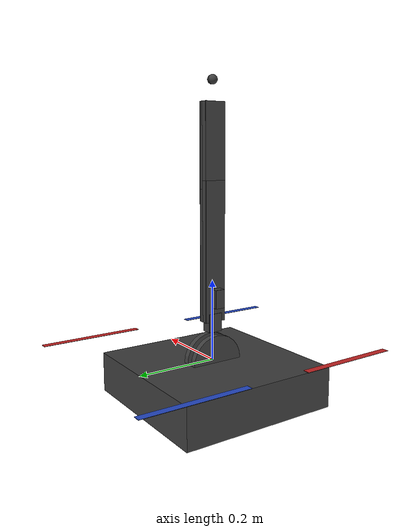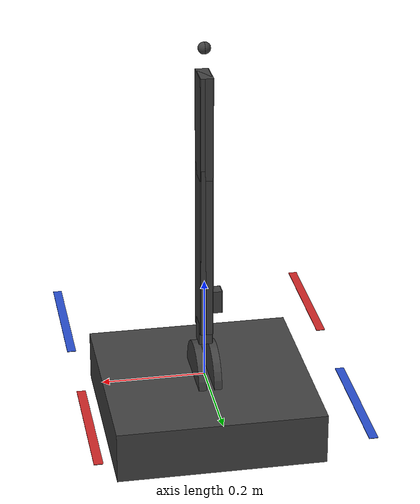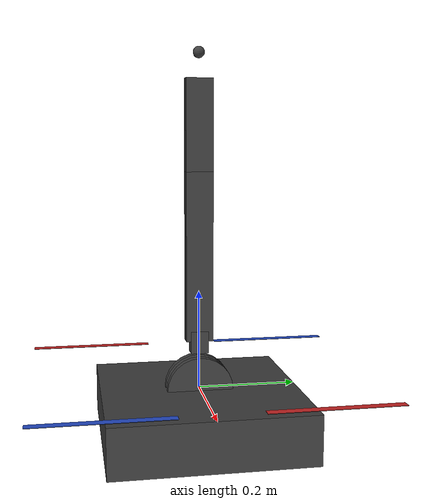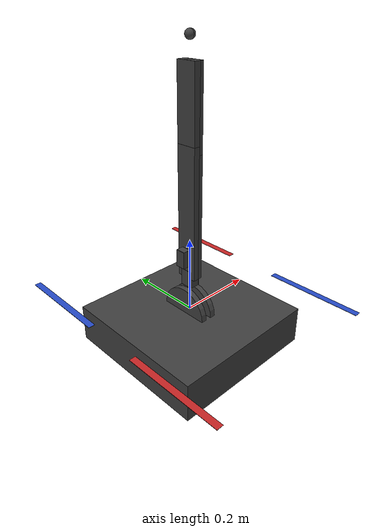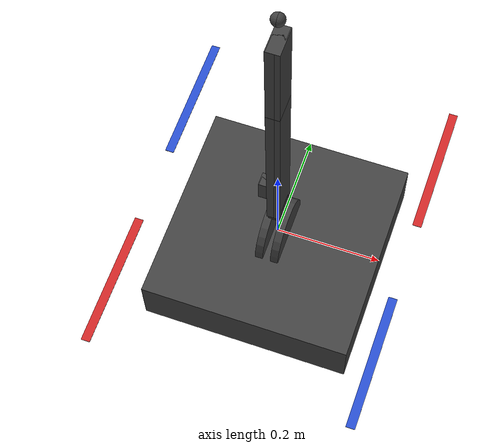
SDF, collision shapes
<sdf version='1.11'>
  <model name='martijn'>
    <link name='base_link'>
      <inertial>
        <pose>0 0 0 0 0 0</pose>
        <mass>2</mass>
        <inertia>
          <ixx>0.029659999999999999</ixx>
          <ixy>0</ixy>
          <ixz>0</ixz>
          <iyy>0.044659999999999998</iyy>
          <iyz>0</iyz>
          <izz>0.068330000000000002</izz>
        </inertia>
      </inertial>
      <collision name='base_link_collision'>
        <pose>0 0 -0.050000000000000003 0 0 0</pose>
        <geometry>
          <box>
            <size>0.40000000000000002 0.40000000000000002 0.10000000000000001</size>
          </box>
        </geometry>
        <surface>
          <bounce>
            <restitution_coefficient>0.01</restitution_coefficient>
          </bounce>
          <contact>
            <ode>
              <max_vel>100</max_vel>
              <min_depth>0.001</min_depth>
            </ode>
          </contact>
          <friction>
            <ode>
              <mu>1000000</mu>
              <mu2>1000000</mu2>
            </ode>
          </friction>
        </surface>
      </collision>
      <visual name='base_link_visual'>
        <pose>0 0 0 0 0 0</pose>
        <geometry>
          <mesh>
            <scale>1 1 1</scale>
            <uri>/home/hapham/aerial_tactile_servoing/ros2_ws/install/px4_uam_sim/share/px4_uam_sim/meshes/Martijn.stl</uri>
          </mesh>
        </geometry>
        <material>
          <diffuse>0.25 0.25 0.25 1</diffuse>
          <ambient>0.25 0.25 0.25 1</ambient>
        </material>
      </visual>
      <sensor name='air_pressure_sensor' type='air_pressure'>
        <always_on>true</always_on>
        <update_rate>50</update_rate>
        <air_pressure>
          <pressure>
            <noise type='gaussian'>
              <mean>0</mean>
              <stddev>0.01</stddev>
            </noise>
          </pressure>
        </air_pressure>
        <gz_frame_id>base_link</gz_frame_id>
      </sensor>
      <sensor name='imu_sensor' type='imu'>
        <always_on>true</always_on>
        <update_rate>1000</update_rate>
        <imu>
          <angular_velocity>
            <x>
              <noise type='gaussian'>
                <mean>0</mean>
                <stddev>0.0001</stddev>
                <dynamic_bias_stddev>0</dynamic_bias_stddev>
                <dynamic_bias_correlation_time>1000</dynamic_bias_correlation_time>
              </noise>
            </x>
            <y>
              <noise type='gaussian'>
                <mean>0</mean>
                <stddev>0.0001</stddev>
                <dynamic_bias_stddev>0</dynamic_bias_stddev>
                <dynamic_bias_correlation_time>1000</dynamic_bias_correlation_time>
              </noise>
            </y>
            <z>
              <noise type='gaussian'>
                <mean>0</mean>
                <stddev>0.0001</stddev>
                <dynamic_bias_stddev>0</dynamic_bias_stddev>
                <dynamic_bias_correlation_time>1000</dynamic_bias_correlation_time>
              </noise>
            </z>
          </angular_velocity>
          <linear_acceleration>
            <x>
              <noise type='gaussian'>
                <mean>0</mean>
                <stddev>0.0001</stddev>
                <dynamic_bias_stddev>0</dynamic_bias_stddev>
                <dynamic_bias_correlation_time>300</dynamic_bias_correlation_time>
              </noise>
            </x>
            <y>
              <noise type='gaussian'>
                <mean>0</mean>
                <stddev>0.0001</stddev>
                <dynamic_bias_stddev>0</dynamic_bias_stddev>
                <dynamic_bias_correlation_time>300</dynamic_bias_correlation_time>
              </noise>
            </y>
            <z>
              <noise type='gaussian'>
                <mean>0</mean>
                <stddev>0.0001</stddev>
                <dynamic_bias_stddev>0</dynamic_bias_stddev>
                <dynamic_bias_correlation_time>300</dynamic_bias_correlation_time>
              </noise>
            </z>
          </linear_acceleration>
        </imu>
        <gz_frame_id>base_link</gz_frame_id>
      </sensor>
      <sensor name='navsat_sensor' type='navsat'>
        <always_on>true</always_on>
        <update_rate>100</update_rate>
        <gz_frame_id>base_link</gz_frame_id>
        <gps/>
      </sensor>
      <sensor name='magnetometer_sensor' type='magnetometer'>
        <always_on>true</always_on>
        <update_rate>100</update_rate>
        <magnetometer>
          <x>
            <noise type='gaussian'>
              <stddev>0.0001</stddev>
            </noise>
          </x>
          <y>
            <noise type='gaussian'>
              <stddev>0.0001</stddev>
            </noise>
          </y>
          <z>
            <noise type='gaussian'>
              <stddev>0.0001</stddev>
            </noise>
          </z>
        </magnetometer>
        <gz_frame_id>base_link</gz_frame_id>
      </sensor>
      <velocity_decay>
        <linear>0</linear>
        <angular>0</angular>
      </velocity_decay>
    </link>
    <joint name='shoulder_joint_1' type='revolute'>
      <pose relative_to='base_link'>0.014999999999999999 0 0 -1.570792653573545 -1.5707926537266703 1.5707926536077643</pose>
      <parent>base_link</parent>
      <child>shoulder_link_1</child>
      <axis>
        <xyz>0 0 -1</xyz>
        <limit>
          <lower>-6.2800000000000002</lower>
          <upper>6.2800000000000002</upper>
          <effort>100</effort>
          <velocity>2</velocity>
        </limit>
        <dynamics>
          <damping>0.0050000000000000001</damping>
          <friction>0.01</friction>
          <spring_reference>0</spring_reference>
          <spring_stiffness>0</spring_stiffness>
        </dynamics>
      </axis>
    </joint>
    <link name='shoulder_link_1'>
      <pose relative_to='shoulder_joint_1'>0 0 0 0 0 0</pose>
      <inertial>
        <pose>0.056583333333333333 0 0.0081666666666666676 0 0 0</pose>
        <mass>0.12</mass>
        <inertia>
          <ixx>0.0001113708286666667</ixx>
          <ixy>0</ixy>
          <ixz>-3.9608333333333338e-05</ixz>
          <iyy>0.00039046666643333361</iyy>
          <iyz>0</iyz>
          <izz>0.00048123749976666683</izz>
        </inertia>
      </inertial>
      <collision name='shoulder_link_1_collision'>
        <pose>0 0 0 0 0 0</pose>
        <geometry>
          <cylinder>
            <length>0.014999999999999999</length>
            <radius>0.067000000000000004</radius>
          </cylinder>
        </geometry>
      </collision>
      <collision name='shoulder_link_1_fixed_joint_lump__motor_link_shoulder_1_collision_1'>
        <pose>0.097000000000000003 0 0.014 0 1.5707963267948966 0</pose>
        <geometry>
          <box>
            <size>0.025000000000000001 0.035000000000000003 0.044999999999999998</size>
          </box>
        </geometry>
      </collision>
      <visual name='shoulder_link_1_visual'>
        <pose>0 0 0 0 0 0</pose>
        <geometry>
          <mesh>
            <scale>1 1 1</scale>
            <uri>/home/hapham/aerial_tactile_servoing/ros2_ws/install/px4_uam_sim/share/px4_uam_sim/meshes/ShoulderLink.stl</uri>
          </mesh>
        </geometry>
        <material>
          <diffuse>0.25 0.25 0.25 1</diffuse>
          <ambient>0.25 0.25 0.25 1</ambient>
        </material>
      </visual>
      <visual name='shoulder_link_1_fixed_joint_lump__motor_link_shoulder_1_visual_1'>
        <pose>0.097000000000000003 0 0.014 0 1.5707963267948966 0</pose>
        <geometry>
          <mesh>
            <scale>1 1 1</scale>
            <uri>/home/hapham/aerial_tactile_servoing/ros2_ws/install/px4_uam_sim/share/px4_uam_sim/meshes/Servo.stl</uri>
          </mesh>
        </geometry>
        <material>
          <diffuse>0.25 0.25 0.25 1</diffuse>
          <ambient>0.25 0.25 0.25 1</ambient>
        </material>
      </visual>
    </link>
    <joint name='elbow_joint_1' type='revolute'>
      <pose relative_to='shoulder_link_1'>0.10949999999991571 0 0.013999954084936209 1.5723926535897819 -4.6587712005727982e-12 -3.1415926477396519</pose>
      <parent>shoulder_link_1</parent>
      <child>elbow_link_1</child>
      <axis>
        <xyz>0 0 1</xyz>
        <limit>
          <lower>-1.5708</lower>
          <upper>2</upper>
          <effort>100</effort>
          <velocity>2</velocity>
        </limit>
        <dynamics>
          <damping>0.01</damping>
          <friction>0.10000000000000001</friction>
          <spring_reference>0</spring_reference>
          <spring_stiffness>0</spring_stiffness>
        </dynamics>
      </axis>
    </joint>
    <link name='elbow_link_1'>
      <pose relative_to='elbow_joint_1'>0 0 0 0 0 0</pose>
      <inertial>
        <pose>-0.083000000000000004 0.010500000000000001 0 0 0 0</pose>
        <mass>0.10000000000000001</mass>
        <inertia>
          <ixx>2.4246661999999999e-05</ixx>
          <ixy>-3.4650000000000022e-05</ixy>
          <ixz>5.0006438111520978e-22</ixz>
          <iyy>0.00056584833209999993</iyy>
          <iyz>0</iyz>
          <izz>0.00056822329310000008</izz>
        </inertia>
      </inertial>
      <collision name='elbow_link_1_collision'>
        <pose>-0.16 0 0 0 0 0</pose>
        <geometry>
          <box>
            <size>0.34000000000000002 0.024 0.053999999999999999</size>
          </box>
        </geometry>
      </collision>
      <collision name='elbow_link_1_fixed_joint_lump__motor_link_elbow_1_collision_1'>
        <pose>-0.050000000000000003 0.014999999999999999 0 0 -1.5707963267948966 0</pose>
        <geometry>
          <box>
            <size>0.025000000000000001 0.035000000000000003 0.044999999999999998</size>
          </box>
        </geometry>
      </collision>
      <visual name='elbow_link_1_visual'>
        <pose>0 0 0 0 0 0</pose>
        <geometry>
          <mesh>
            <scale>1 1 1</scale>
            <uri>/home/hapham/aerial_tactile_servoing/ros2_ws/install/px4_uam_sim/share/px4_uam_sim/meshes/ElbowLink.stl</uri>
          </mesh>
        </geometry>
        <material>
          <diffuse>0.25 0.25 0.25 1</diffuse>
          <ambient>0.25 0.25 0.25 1</ambient>
        </material>
      </visual>
      <visual name='elbow_link_1_fixed_joint_lump__motor_link_elbow_1_visual_1'>
        <pose>-0.050000000000000003 0.014999999999999999 0 0 -1.5707963267948966 0</pose>
        <geometry>
          <mesh>
            <scale>1 1 1</scale>
            <uri>/home/hapham/aerial_tactile_servoing/ros2_ws/install/px4_uam_sim/share/px4_uam_sim/meshes/ServoElbow.stl</uri>
          </mesh>
        </geometry>
        <material>
          <diffuse>0.25 0.25 0.25 1</diffuse>
          <ambient>0.25 0.25 0.25 1</ambient>
        </material>
      </visual>
    </link>
    <joint name='forearm_joint_1' type='revolute'>
      <pose relative_to='elbow_link_1'>-0.31 0 0 0 0 0</pose>
      <parent>elbow_link_1</parent>
      <child>forearm_link_1</child>
      <axis>
        <xyz>0 -1 0</xyz>
        <limit>
          <lower>-2.1000000000000001</lower>
          <upper>2.1000000000000001</upper>
          <effort>100</effort>
          <velocity>20</velocity>
        </limit>
        <dynamics>
          <damping>0.0001</damping>
          <friction>0</friction>
          <spring_reference>0</spring_reference>
          <spring_stiffness>0</spring_stiffness>
        </dynamics>
      </axis>
    </joint>
    <link name='forearm_link_1'>
      <pose relative_to='forearm_joint_1'>0 0 0 0 0 0</pose>
      <inertial>
        <pose>-0.13209499999999999 0 0 0 0 0</pose>
        <mass>0.040000000000000001</mass>
        <inertia>
          <ixx>1.049e-05</ixx>
          <ixy>0</ixy>
          <ixz>0</ixz>
          <iyy>0.00020190149232784629</iyy>
          <iyz>0</iyz>
          <izz>0.00020190149232784629</izz>
        </inertia>
      </inertial>
      <collision name='forearm_link_1_collision'>
        <pose>-0.099999999999999992 0 0 0 0 0</pose>
        <geometry>
          <box>
            <size>0.20000000000000001 0.024 0.053999999999999999</size>
          </box>
        </geometry>
      </collision>
      <collision name='forearm_link_1_fixed_joint_lump__tactip_link_1_collision_1'>
        <pose>-0.24875 0 0 0 0 0</pose>
        <geometry>
          <sphere>
            <radius>0.01125</radius>
          </sphere>
        </geometry>
      </collision>
      <visual name='forearm_link_1_visual'>
        <pose>0 0 0 0 0 0</pose>
        <geometry>
          <mesh>
            <scale>1 1 1</scale>
            <uri>/home/hapham/aerial_tactile_servoing/ros2_ws/install/px4_uam_sim/share/px4_uam_sim/meshes/ForearmLink.stl</uri>
          </mesh>
        </geometry>
        <material>
          <diffuse>0.25 0.25 0.25 1</diffuse>
          <ambient>0.25 0.25 0.25 1</ambient>
        </material>
      </visual>
      <visual name='forearm_link_1_fixed_joint_lump__tactip_link_1_visual_1'>
        <pose>-0.24875 0 0 0 0 0</pose>
        <geometry>
          <sphere>
            <radius>0.01125</radius>
          </sphere>
        </geometry>
        <material>
          <diffuse>0.187500015 0.187500015 0.187500015 1</diffuse>
          <ambient>0.187500015 0.187500015 0.187500015 1</ambient>
        </material>
      </visual>
      <visual name='forearm_link_1_fixed_joint_lump__tactip_link_1_visual_2'>
        <pose>-0.22838 0 0 0 1.5707963267948966 0</pose>
        <geometry>
          <cylinder>
            <length>0.040750000000000001</length>
            <radius>0.012500000000000001</radius>
          </cylinder>
        </geometry>
        <material>
          <diffuse>1 1 1 1</diffuse>
          <ambient>1 1 1 1</ambient>
        </material>
      </visual>
    </link>
    <joint name='shoulder_joint_2' type='revolute'>
      <pose relative_to='base_link'>-0.014999999999999999 0 0 -1.5707926536359929 -1.5707926536964443 -1.5707926535604291</pose>
      <parent>base_link</parent>
      <child>shoulder_link_2</child>
      <axis>
        <xyz>0 0 1</xyz>
        <limit>
          <lower>-6.2800000000000002</lower>
          <upper>6.2800000000000002</upper>
          <effort>100</effort>
          <velocity>2</velocity>
        </limit>
        <dynamics>
          <damping>0.0050000000000000001</damping>
          <friction>0.01</friction>
          <spring_reference>0</spring_reference>
          <spring_stiffness>0</spring_stiffness>
        </dynamics>
      </axis>
    </joint>
    <link name='shoulder_link_2'>
      <pose relative_to='shoulder_joint_2'>0 0 0 0 0 0</pose>
      <inertial>
        <pose>0.056583333333333333 0 0.0084583333333333333 0 0 0</pose>
        <mass>0.12</mass>
        <inertia>
          <ixx>0.0001117864536666667</ixx>
          <ixy>0</ixy>
          <ixz>-4.1022916666666687e-05</ixz>
          <iyy>0.00039088229143333352</iyy>
          <iyz>0</iyz>
          <izz>0.00048123749976666683</izz>
        </inertia>
      </inertial>
      <collision name='shoulder_link_2_collision'>
        <pose>0 0 0 0 0 0</pose>
        <geometry>
          <cylinder>
            <length>0.014999999999999999</length>
            <radius>0.067000000000000004</radius>
          </cylinder>
        </geometry>
      </collision>
      <collision name='shoulder_link_2_fixed_joint_lump__motor_link_shoulder_2_collision_1'>
        <pose>0.097000000000000003 0 0.014500000000000001 0 1.5707963267948966 0</pose>
        <geometry>
          <box>
            <size>0.025000000000000001 0.035000000000000003 0.044999999999999998</size>
          </box>
        </geometry>
      </collision>
      <visual name='shoulder_link_2_visual'>
        <pose>0 0 0 0 0 0</pose>
        <geometry>
          <mesh>
            <scale>1 1 1</scale>
            <uri>/home/hapham/aerial_tactile_servoing/ros2_ws/install/px4_uam_sim/share/px4_uam_sim/meshes/ShoulderLink.stl</uri>
          </mesh>
        </geometry>
        <material>
          <diffuse>0.25 0.25 0.25 1</diffuse>
          <ambient>0.25 0.25 0.25 1</ambient>
        </material>
      </visual>
      <visual name='shoulder_link_2_fixed_joint_lump__motor_link_shoulder_2_visual_1'>
        <pose>0.097000000000000003 0 0.014500000000000001 0 1.5707963267948966 0</pose>
        <geometry>
          <mesh>
            <scale>1 1 1</scale>
            <uri>/home/hapham/aerial_tactile_servoing/ros2_ws/install/px4_uam_sim/share/px4_uam_sim/meshes/Servo.stl</uri>
          </mesh>
        </geometry>
        <material>
          <diffuse>0.25 0.25 0.25 1</diffuse>
          <ambient>0.25 0.25 0.25 1</ambient>
        </material>
      </visual>
    </link>
    <joint name='elbow_joint_2' type='revolute'>
      <pose relative_to='shoulder_link_2'>0.10949999999991571 0 0.01449995408493621 -1.5707926535897929 -7.3464102067221545e-06 3.1415926535897931</pose>
      <parent>shoulder_link_2</parent>
      <child>elbow_link_2</child>
      <axis>
        <xyz>0 0 1</xyz>
        <limit>
          <lower>-1.5708</lower>
          <upper>2</upper>
          <effort>100</effort>
          <velocity>2</velocity>
        </limit>
        <dynamics>
          <damping>0.01</damping>
          <friction>0.10000000000000001</friction>
          <spring_reference>0</spring_reference>
          <spring_stiffness>0</spring_stiffness>
        </dynamics>
      </axis>
    </joint>
    <link name='elbow_link_2'>
      <pose relative_to='elbow_joint_2'>0 0 0 0 0 0</pose>
      <inertial>
        <pose>-0.083000000000000004 0.010500000000000001 0 0 0 0</pose>
        <mass>0.10000000000000001</mass>
        <inertia>
          <ixx>2.4246661999999999e-05</ixx>
          <ixy>-3.4650000000000022e-05</ixy>
          <ixz>5.0006438111520978e-22</ixz>
          <iyy>0.00056584833209999993</iyy>
          <iyz>0</iyz>
          <izz>0.00056822329310000008</izz>
        </inertia>
      </inertial>
      <collision name='elbow_link_2_collision'>
        <pose>-0.16 0 0 0 0 3.1400000000000001</pose>
        <geometry>
          <box>
            <size>0.34000000000000002 0.024 0.053999999999999999</size>
          </box>
        </geometry>
      </collision>
      <collision name='elbow_link_2_fixed_joint_lump__motor_link_elbow_2_collision_1'>
        <pose>-0.050000000000000003 0.014999999999999999 0 0 -1.5707963267948966 0</pose>
        <geometry>
          <box>
            <size>0.025000000000000001 0.035000000000000003 0.044999999999999998</size>
          </box>
        </geometry>
      </collision>
      <visual name='elbow_link_2_visual'>
        <pose>0 0 0 0 0 0</pose>
        <geometry>
          <mesh>
            <scale>1 1 1</scale>
            <uri>/home/hapham/aerial_tactile_servoing/ros2_ws/install/px4_uam_sim/share/px4_uam_sim/meshes/ElbowLink.stl</uri>
          </mesh>
        </geometry>
        <material>
          <diffuse>0.25 0.25 0.25 1</diffuse>
          <ambient>0.25 0.25 0.25 1</ambient>
        </material>
      </visual>
      <visual name='elbow_link_2_fixed_joint_lump__motor_link_elbow_2_visual_1'>
        <pose>-0.050000000000000003 0.014999999999999999 0 0 -1.5707963267948966 0</pose>
        <geometry>
          <mesh>
            <scale>1 1 1</scale>
            <uri>/home/hapham/aerial_tactile_servoing/ros2_ws/install/px4_uam_sim/share/px4_uam_sim/meshes/ServoElbow.stl</uri>
          </mesh>
        </geometry>
        <material>
          <diffuse>0.25 0.25 0.25 1</diffuse>
          <ambient>0.25 0.25 0.25 1</ambient>
        </material>
      </visual>
    </link>
    <joint name='forearm_joint_2' type='revolute'>
      <pose relative_to='elbow_link_2'>-0.31 0 0 0 0 0</pose>
      <parent>elbow_link_2</parent>
      <child>forearm_link_2</child>
      <axis>
        <xyz>0 -1 0</xyz>
        <limit>
          <lower>-2.1000000000000001</lower>
          <upper>2.1000000000000001</upper>
          <effort>100</effort>
          <velocity>20</velocity>
        </limit>
        <dynamics>
          <damping>0.0001</damping>
          <friction>0</friction>
          <spring_reference>0</spring_reference>
          <spring_stiffness>0</spring_stiffness>
        </dynamics>
      </axis>
    </joint>
    <link name='forearm_link_2'>
      <pose relative_to='forearm_joint_2'>0 0 0 0 0 0</pose>
      <inertial>
        <pose>-0.13209499999999999 0 0 0 0 0</pose>
        <mass>0.040000000000000001</mass>
        <inertia>
          <ixx>1.049e-05</ixx>
          <ixy>0</ixy>
          <ixz>0</ixz>
          <iyy>0.00020190149232784629</iyy>
          <iyz>0</iyz>
          <izz>0.00020190149232784629</izz>
        </inertia>
      </inertial>
      <collision name='forearm_link_2_collision'>
        <pose>-0.099999999999999992 0 0 0 0 0</pose>
        <geometry>
          <box>
            <size>0.20000000000000001 0.024 0.053999999999999999</size>
          </box>
        </geometry>
      </collision>
      <collision name='forearm_link_2_fixed_joint_lump__tactip_link_2_collision_1'>
        <pose>-0.24875 0 0 0 0 0</pose>
        <geometry>
          <sphere>
            <radius>0.01125</radius>
          </sphere>
        </geometry>
      </collision>
      <visual name='forearm_link_2_visual'>
        <pose>0 0 0 0 0 0</pose>
        <geometry>
          <mesh>
            <scale>1 1 1</scale>
            <uri>/home/hapham/aerial_tactile_servoing/ros2_ws/install/px4_uam_sim/share/px4_uam_sim/meshes/ForearmLink.stl</uri>
          </mesh>
        </geometry>
        <material>
          <diffuse>0.25 0.25 0.25 1</diffuse>
          <ambient>0.25 0.25 0.25 1</ambient>
        </material>
      </visual>
      <visual name='forearm_link_2_fixed_joint_lump__tactip_link_2_visual_1'>
        <pose>-0.24875 0 0 0 0 0</pose>
        <geometry>
          <sphere>
            <radius>0.01125</radius>
          </sphere>
        </geometry>
        <material>
          <diffuse>0.187500015 0.187500015 0.187500015 1</diffuse>
          <ambient>0.187500015 0.187500015 0.187500015 1</ambient>
        </material>
      </visual>
      <visual name='forearm_link_2_fixed_joint_lump__tactip_link_2_visual_2'>
        <pose>-0.22838 0 0 0 1.5707963267948966 0</pose>
        <geometry>
          <cylinder>
            <length>0.040750000000000001</length>
            <radius>0.012500000000000001</radius>
          </cylinder>
        </geometry>
        <material>
          <diffuse>1 1 1 1</diffuse>
          <ambient>1 1 1 1</ambient>
        </material>
      </visual>
    </link>
    <link name='rotor_0'>
      <gravity>true</gravity>
      <self_collide>false</self_collide>
      <velocity_decay/>
      <pose>0.2495 -0.20799999999999999 0.029999999999999999 0 0 0</pose>
      <inertial>
        <mass>0.016076923076923075</mass>
        <inertia>
          <ixx>3.8464910483993325e-07</ixx>
          <iyy>2.6115851691700804e-05</iyy>
          <izz>2.6498582347140039e-05</izz>
          <ixy>0</ixy>
          <ixz>0</ixz>
          <iyz>0</iyz>
        </inertia>
      </inertial>
      <visual name='rotor_0_visual'>
        <pose>0 0 0 0 0 1.5708</pose>
        <geometry>
          <mesh>
            <scale>0.67000000000000004 0.67000000000000004 0.84615384615384615</scale>
            <uri>/home/hapham/aerial_tactile_servoing/ros2_ws/install/px4_uam_sim/share/px4_uam_sim/meshes/centered_prop_ccw.stl</uri>
          </mesh>
        </geometry>
        <material>
          <script>
            <name>Gazebo/Blue</name>
            <uri>file://media/materials/scripts/gazebo.material</uri>
          </script>
        </material>
      </visual>
      <collision name='rotor_0_collision'>
        <pose>0 0 0 0 0 1.5708</pose>
        <geometry>
          <box>
            <size>0.26000000000000001 0.016923076923076923 0.0008461538461538462</size>
          </box>
        </geometry>
        <surface>
          <contact>
            <ode>
              <min_depth>0.001</min_depth>
              <max_vel>0</max_vel>
            </ode>
          </contact>
          <friction>
            <ode/>
          </friction>
        </surface>
      </collision>
    </link>
    <joint name='rotor_0_joint' type='revolute'>
      <parent>base_link</parent>
      <child>rotor_0</child>
      <axis>
        <xyz>0 0 1</xyz>
        <limit>
          <lower>-10000000000000000</lower>
          <upper>10000000000000000</upper>
        </limit>
        <dynamics>
          <spring_reference>0</spring_reference>
          <spring_stiffness>0</spring_stiffness>
        </dynamics>
      </axis>
    </joint>
    <plugin name='gz::sim::systems::MulticopterMotorModel' filename='gz-sim-multicopter-motor-model-system'>
      <jointName>rotor_0_joint</jointName>
      <linkName>rotor_0</linkName>
      <turningDirection>ccw</turningDirection>
      <timeConstantUp>0.0125</timeConstantUp>
      <timeConstantDown>0.025</timeConstantDown>
      <maxRotVelocity>1000.0</maxRotVelocity>
      <motorConstant>4e-05</motorConstant>
      <momentConstant>0.016</momentConstant>
      <commandSubTopic>command/motor_speed</commandSubTopic>
      <motorNumber>0</motorNumber>
      <rotorDragCoefficient>8.06428e-05</rotorDragCoefficient>
      <rollingMomentCoefficient>1e-06</rollingMomentCoefficient>
      <rotorVelocitySlowdownSim>10</rotorVelocitySlowdownSim>
      <motorType>velocity</motorType>
    </plugin>
    <link name='rotor_1'>
      <gravity>true</gravity>
      <self_collide>false</self_collide>
      <velocity_decay/>
      <pose>-0.2495 0.20799999999999999 0.029999999999999999 0 0 0</pose>
      <inertial>
        <mass>0.016076923076923075</mass>
        <inertia>
          <ixx>3.8464910483993325e-07</ixx>
          <iyy>2.6115851691700804e-05</iyy>
          <izz>2.6498582347140039e-05</izz>
          <ixy>0</ixy>
          <ixz>0</ixz>
          <iyz>0</iyz>
        </inertia>
      </inertial>
      <visual name='rotor_1_visual'>
        <pose>0 0 0 0 0 1.5708</pose>
        <geometry>
          <mesh>
            <scale>0.67000000000000004 0.67000000000000004 0.84615384615384615</scale>
            <uri>/home/hapham/aerial_tactile_servoing/ros2_ws/install/px4_uam_sim/share/px4_uam_sim/meshes/centered_prop_ccw.stl</uri>
          </mesh>
        </geometry>
        <material>
          <script>
            <name>Gazebo/Blue</name>
            <uri>file://media/materials/scripts/gazebo.material</uri>
          </script>
        </material>
      </visual>
      <collision name='rotor_1_collision'>
        <pose>0 0 0 0 0 1.5708</pose>
        <geometry>
          <box>
            <size>0.26000000000000001 0.016923076923076923 0.0008461538461538462</size>
          </box>
        </geometry>
        <surface>
          <contact>
            <ode>
              <min_depth>0.001</min_depth>
              <max_vel>0</max_vel>
            </ode>
          </contact>
          <friction>
            <ode/>
          </friction>
        </surface>
      </collision>
    </link>
    <joint name='rotor_1_joint' type='revolute'>
      <parent>base_link</parent>
      <child>rotor_1</child>
      <axis>
        <xyz>0 0 1</xyz>
        <limit>
          <lower>-10000000000000000</lower>
          <upper>10000000000000000</upper>
        </limit>
        <dynamics>
          <spring_reference>0</spring_reference>
          <spring_stiffness>0</spring_stiffness>
        </dynamics>
      </axis>
    </joint>
    <plugin name='gz::sim::systems::MulticopterMotorModel' filename='gz-sim-multicopter-motor-model-system'>
      <jointName>rotor_1_joint</jointName>
      <linkName>rotor_1</linkName>
      <turningDirection>ccw</turningDirection>
      <timeConstantUp>0.0125</timeConstantUp>
      <timeConstantDown>0.025</timeConstantDown>
      <maxRotVelocity>1000.0</maxRotVelocity>
      <motorConstant>4e-05</motorConstant>
      <momentConstant>0.016</momentConstant>
      <commandSubTopic>command/motor_speed</commandSubTopic>
      <motorNumber>1</motorNumber>
      <rotorDragCoefficient>8.06428e-05</rotorDragCoefficient>
      <rollingMomentCoefficient>1e-06</rollingMomentCoefficient>
      <rotorVelocitySlowdownSim>10</rotorVelocitySlowdownSim>
      <motorType>velocity</motorType>
    </plugin>
    <link name='rotor_2'>
      <gravity>true</gravity>
      <self_collide>false</self_collide>
      <velocity_decay/>
      <pose>0.2495 0.20799999999999999 0.029999999999999999 0 0 0</pose>
      <inertial>
        <mass>0.016076923076923075</mass>
        <inertia>
          <ixx>3.8464910483993325e-07</ixx>
          <iyy>2.6115851691700804e-05</iyy>
          <izz>2.6498582347140039e-05</izz>
          <ixy>0</ixy>
          <ixz>0</ixz>
          <iyz>0</iyz>
        </inertia>
      </inertial>
      <visual name='rotor_2_visual'>
        <pose>0 0 0 0 0 1.5708</pose>
        <geometry>
          <mesh>
            <scale>0.67000000000000004 0.67000000000000004 0.84615384615384615</scale>
            <uri>/home/hapham/aerial_tactile_servoing/ros2_ws/install/px4_uam_sim/share/px4_uam_sim/meshes/centered_prop_ccw.stl</uri>
          </mesh>
        </geometry>
        <material>
          <script>
            <name>Gazebo/Red</name>
            <uri>file://media/materials/scripts/gazebo.material</uri>
          </script>
        </material>
      </visual>
      <collision name='rotor_2_collision'>
        <pose>0 0 0 0 0 1.5708</pose>
        <geometry>
          <box>
            <size>0.26000000000000001 0.016923076923076923 0.0008461538461538462</size>
          </box>
        </geometry>
        <surface>
          <contact>
            <ode>
              <min_depth>0.001</min_depth>
              <max_vel>0</max_vel>
            </ode>
          </contact>
          <friction>
            <ode/>
          </friction>
        </surface>
      </collision>
    </link>
    <joint name='rotor_2_joint' type='revolute'>
      <parent>base_link</parent>
      <child>rotor_2</child>
      <axis>
        <xyz>0 0 1</xyz>
        <limit>
          <lower>-10000000000000000</lower>
          <upper>10000000000000000</upper>
        </limit>
        <dynamics>
          <spring_reference>0</spring_reference>
          <spring_stiffness>0</spring_stiffness>
        </dynamics>
      </axis>
    </joint>
    <plugin name='gz::sim::systems::MulticopterMotorModel' filename='gz-sim-multicopter-motor-model-system'>
      <jointName>rotor_2_joint</jointName>
      <linkName>rotor_2</linkName>
      <turningDirection>cw</turningDirection>
      <timeConstantUp>0.0125</timeConstantUp>
      <timeConstantDown>0.025</timeConstantDown>
      <maxRotVelocity>1000.0</maxRotVelocity>
      <motorConstant>4e-05</motorConstant>
      <momentConstant>0.016</momentConstant>
      <commandSubTopic>command/motor_speed</commandSubTopic>
      <motorNumber>2</motorNumber>
      <rotorDragCoefficient>8.06428e-05</rotorDragCoefficient>
      <rollingMomentCoefficient>1e-06</rollingMomentCoefficient>
      <rotorVelocitySlowdownSim>10</rotorVelocitySlowdownSim>
      <motorType>velocity</motorType>
    </plugin>
    <link name='rotor_3'>
      <gravity>true</gravity>
      <self_collide>false</self_collide>
      <velocity_decay/>
      <pose>-0.2495 -0.20799999999999999 0.029999999999999999 0 0 0</pose>
      <inertial>
        <mass>0.016076923076923075</mass>
        <inertia>
          <ixx>3.8464910483993325e-07</ixx>
          <iyy>2.6115851691700804e-05</iyy>
          <izz>2.6498582347140039e-05</izz>
          <ixy>0</ixy>
          <ixz>0</ixz>
          <iyz>0</iyz>
        </inertia>
      </inertial>
      <visual name='rotor_3_visual'>
        <pose>0 0 0 0 0 1.5708</pose>
        <geometry>
          <mesh>
            <scale>0.67000000000000004 0.67000000000000004 0.84615384615384615</scale>
            <uri>/home/hapham/aerial_tactile_servoing/ros2_ws/install/px4_uam_sim/share/px4_uam_sim/meshes/centered_prop_ccw.stl</uri>
          </mesh>
        </geometry>
        <material>
          <script>
            <name>Gazebo/Red</name>
            <uri>file://media/materials/scripts/gazebo.material</uri>
          </script>
        </material>
      </visual>
      <collision name='rotor_3_collision'>
        <pose>0 0 0 0 0 1.5708</pose>
        <geometry>
          <box>
            <size>0.26000000000000001 0.016923076923076923 0.0008461538461538462</size>
          </box>
        </geometry>
        <surface>
          <contact>
            <ode>
              <min_depth>0.001</min_depth>
              <max_vel>0</max_vel>
            </ode>
          </contact>
          <friction>
            <ode/>
          </friction>
        </surface>
      </collision>
    </link>
    <joint name='rotor_3_joint' type='revolute'>
      <parent>base_link</parent>
      <child>rotor_3</child>
      <axis>
        <xyz>0 0 1</xyz>
        <limit>
          <lower>-10000000000000000</lower>
          <upper>10000000000000000</upper>
        </limit>
        <dynamics>
          <spring_reference>0</spring_reference>
          <spring_stiffness>0</spring_stiffness>
        </dynamics>
      </axis>
    </joint>
    <plugin name='gz::sim::systems::MulticopterMotorModel' filename='gz-sim-multicopter-motor-model-system'>
      <jointName>rotor_3_joint</jointName>
      <linkName>rotor_3</linkName>
      <turningDirection>cw</turningDirection>
      <timeConstantUp>0.0125</timeConstantUp>
      <timeConstantDown>0.025</timeConstantDown>
      <maxRotVelocity>1000.0</maxRotVelocity>
      <motorConstant>4e-05</motorConstant>
      <momentConstant>0.016</momentConstant>
      <commandSubTopic>command/motor_speed</commandSubTopic>
      <motorNumber>3</motorNumber>
      <rotorDragCoefficient>8.06428e-05</rotorDragCoefficient>
      <rollingMomentCoefficient>1e-06</rollingMomentCoefficient>
      <rotorVelocitySlowdownSim>10</rotorVelocitySlowdownSim>
      <motorType>velocity</motorType>
    </plugin>
    <plugin name='gz::sim::systems::OdometryPublisher' filename='gz-sim-odometry-publisher-system'>
      <odom_frame>odom</odom_frame>
      <robot_base_frame>base_link</robot_base_frame>
      <dimensions>3</dimensions>
    </plugin>
    <plugin name='gz::sim::systems::JointStatePublisher' filename='gz-sim-joint-state-publisher-system'>
      <joint_name>shoulder_joint_1</joint_name>
      <joint_name>elbow_joint_1</joint_name>
      <joint_name>forearm_joint_1</joint_name>
      <joint_name>shoulder_joint_2</joint_name>
      <joint_name>elbow_joint_2</joint_name>
      <joint_name>forearm_joint_2</joint_name>
    </plugin>
    <plugin name='gz::sim::systems::JointController' filename='gz-sim-joint-controller-system'>
      <joint_name>shoulder_joint_1</joint_name>
      <initial_velocity>0.0</initial_velocity>
      <use_force_commands>True</use_force_commands>
      <topic>shoulder_1_joint_vel</topic>
      <p_gain>3.0</p_gain>
      <d_gain>0.001</d_gain>
      <i_gain>3.0</i_gain>
      <i_max>5</i_max>
      <i_min>-5</i_min>
    </plugin>
    <plugin name='gz::sim::systems::JointController' filename='gz-sim-joint-controller-system'>
      <joint_name>elbow_joint_1</joint_name>
      <initial_velocity>0.0</initial_velocity>
      <use_force_commands>True</use_force_commands>
      <topic>elbow_1_joint_vel</topic>
      <p_gain>3.0</p_gain>
      <d_gain>0.0</d_gain>
      <i_gain>0.5</i_gain>
      <i_max>1</i_max>
      <i_min>-1</i_min>
    </plugin>
    <plugin name='gz::sim::systems::JointController' filename='gz-sim-joint-controller-system'>
      <joint_name>forearm_joint_1</joint_name>
      <initial_velocity>0.0</initial_velocity>
      <use_force_commands>True</use_force_commands>
      <topic>forearm_1_joint_vel</topic>
      <p_gain>0.3</p_gain>
      <d_gain>0.0</d_gain>
      <i_gain>0.3</i_gain>
      <i_max>1</i_max>
      <i_min>-1</i_min>
    </plugin>
    <plugin name='gz::sim::systems::JointController' filename='gz-sim-joint-controller-system'>
      <joint_name>shoulder_joint_2</joint_name>
      <initial_velocity>0.0</initial_velocity>
      <use_force_commands>True</use_force_commands>
      <topic>shoulder_2_joint_vel</topic>
      <p_gain>3.0</p_gain>
      <d_gain>0.001</d_gain>
      <i_gain>3.0</i_gain>
      <i_max>5</i_max>
      <i_min>-5</i_min>
    </plugin>
    <plugin name='gz::sim::systems::JointController' filename='gz-sim-joint-controller-system'>
      <joint_name>elbow_joint_2</joint_name>
      <initial_velocity>0.0</initial_velocity>
      <use_force_commands>True</use_force_commands>
      <topic>elbow_2_joint_vel</topic>
      <p_gain>3.0</p_gain>
      <d_gain>0.0</d_gain>
      <i_gain>0.5</i_gain>
      <i_max>1</i_max>
      <i_min>-1</i_min>
    </plugin>
    <plugin name='gz::sim::systems::JointController' filename='gz-sim-joint-controller-system'>
      <joint_name>forearm_joint_2</joint_name>
      <initial_velocity>0.0</initial_velocity>
      <use_force_commands>True</use_force_commands>
      <topic>forearm_2_joint_vel</topic>
      <p_gain>0.3</p_gain>
      <d_gain>0.0</d_gain>
      <i_gain>0.3</i_gain>
      <i_max>1</i_max>
      <i_min>-1</i_min>
    </plugin>
    <frame name='motor_link_shoulder_1_joint' attached_to='shoulder_link_1'>
      <pose>0.097000000000000003 0 0.014 3.1415926535897931 1.5707926536359933 3.1415926535897931</pose>
    </frame>
    <frame name='motor_link_shoulder_1' attached_to='motor_link_shoulder_1_joint'>
      <pose>0 0 0 0 0 0</pose>
    </frame>
    <frame name='motor_link_elbow_1_joint' attached_to='elbow_link_1'>
      <pose>-0.050000000000000003 0.014999999999999999 0 3.1415926535897931 -1.5707926536359933 3.1415926535897931</pose>
    </frame>
    <frame name='motor_link_elbow_1' attached_to='motor_link_elbow_1_joint'>
      <pose>0 0 0 0 0 0</pose>
    </frame>
    <frame name='tactip_joint_1' attached_to='forearm_link_1'>
      <pose>-0.20799999999999999 0 0 0 0 0</pose>
    </frame>
    <frame name='tactip_link_1' attached_to='tactip_joint_1'>
      <pose>0 0 0 0 0 0</pose>
    </frame>
    <frame name='motor_link_shoulder_2_joint' attached_to='shoulder_link_2'>
      <pose>0.097000000000000003 0 0.014500000000000001 3.1415926535897931 1.5707926536359933 3.1415926535897931</pose>
    </frame>
    <frame name='motor_link_shoulder_2' attached_to='motor_link_shoulder_2_joint'>
      <pose>0 0 0 0 0 0</pose>
    </frame>
    <frame name='motor_link_elbow_2_joint' attached_to='elbow_link_2'>
      <pose>-0.050000000000000003 0.014999999999999999 0 3.1415926535897931 -1.5707926536359933 3.1415926535897931</pose>
    </frame>
    <frame name='motor_link_elbow_2' attached_to='motor_link_elbow_2_joint'>
      <pose>0 0 0 0 0 0</pose>
    </frame>
    <frame name='tactip_joint_2' attached_to='forearm_link_2'>
      <pose>-0.20799999999999999 0 0 0 0 0</pose>
    </frame>
    <frame name='tactip_link_2' attached_to='tactip_joint_2'>
      <pose>0 0 0 0 0 0</pose>
    </frame>
  </model>
</sdf>
